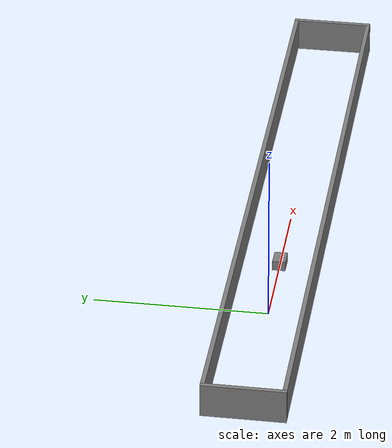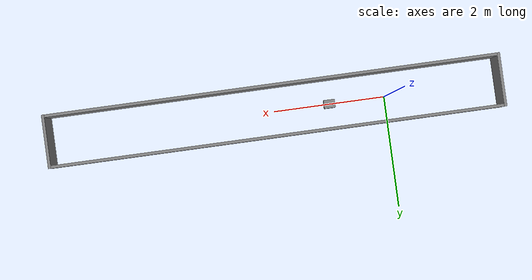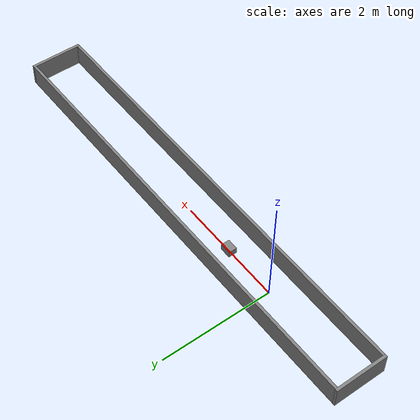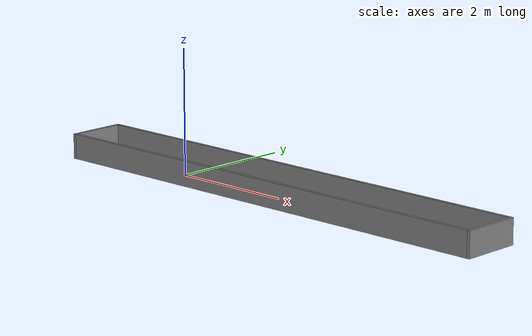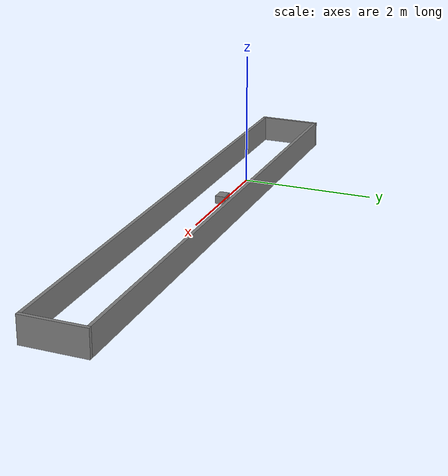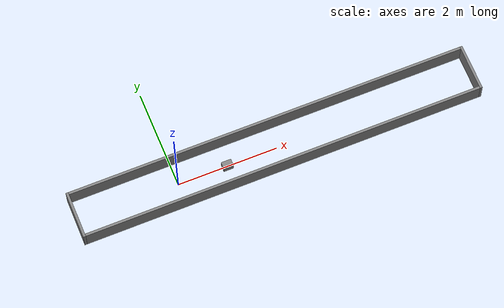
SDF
<?xml version='1.0' encoding='utf-8'?>
<sdf version="1.9"><world name="g0_lab"><gravity>0 0 0</gravity><physics name="g0_physics" type="ignored"><max_step_size>0.001</max_step_size><real_time_factor>1</real_time_factor></physics><plugin filename="gz-sim-physics-system" name="gz::sim::systems::Physics" /><plugin filename="gz-sim-user-commands-system" name="gz::sim::systems::UserCommands" /><plugin filename="gz-sim-scene-broadcaster-system" name="gz::sim::systems::SceneBroadcaster" /><plugin filename="gz-sim-sensors-system" name="gz::sim::systems::Sensors"><render_engine>ogre2</render_engine></plugin><scene><ambient>.8 .8 .8 1</ambient><background>.1 .1 .1 1</background></scene><model name="g0_wall_0"><static>true</static><pose>2.0 -0.45 0.2 0 0 0.0</pose><link name="body"><visual name="g0_wall_0_visual"><geometry><box><size>8.0 0.05 0.4</size></box></geometry><material><ambient>.5 .5 .5 1</ambient><diffuse>.5 .5 .5 1</diffuse></material></visual><collision name="g0_wall_0_collision"><geometry><box><size>8.0 0.05 0.4</size></box></geometry></collision></link></model><model name="g0_wall_1"><static>true</static><pose>2.0 0.45 0.2 0 0 0.0</pose><link name="body"><visual name="g0_wall_1_visual"><geometry><box><size>8.0 0.05 0.4</size></box></geometry><material><ambient>.5 .5 .5 1</ambient><diffuse>.5 .5 .5 1</diffuse></material></visual><collision name="g0_wall_1_collision"><geometry><box><size>8.0 0.05 0.4</size></box></geometry></collision></link></model><model name="g0_wall_2"><static>true</static><pose>-2.025 0.0 0.2 0 0 0.0</pose><link name="body"><visual name="g0_wall_2_visual"><geometry><box><size>0.05 0.95 0.4</size></box></geometry><material><ambient>.5 .5 .5 1</ambient><diffuse>.5 .5 .5 1</diffuse></material></visual><collision name="g0_wall_2_collision"><geometry><box><size>0.05 0.95 0.4</size></box></geometry></collision></link></model><model name="g0_wall_3"><static>true</static><pose>6.025 0.0 0.2 0 0 0.0</pose><link name="body"><visual name="g0_wall_3_visual"><geometry><box><size>0.05 0.95 0.4</size></box></geometry><material><ambient>.5 .5 .5 1</ambient><diffuse>.5 .5 .5 1</diffuse></material></visual><collision name="g0_wall_3_collision"><geometry><box><size>0.05 0.95 0.4</size></box></geometry></collision></link></model><model name="g0_actor"><static>true</static><pose>1.0 0.0 0.06 0 0 0.0</pose><link name="body"><visual name="g0_actor_visual"><geometry><box><size>0.2 0.15 0.12</size></box></geometry><material><ambient>.5 .5 .5 1</ambient><diffuse>.5 .5 .5 1</diffuse></material></visual><collision name="g0_actor_collision"><geometry><box><size>0.2 0.15 0.12</size></box></geometry></collision></link><plugin filename="gz-sim-pose-publisher-system" name="gz::sim::systems::PosePublisher"><publish_model_pose>true</publish_model_pose><publish_link_pose>false</publish_link_pose><use_pose_vector_msg>true</use_pose_vector_msg><static_publisher>false</static_publisher><update_frequency>100</update_frequency><topic>/g0/actor_pose</topic></plugin></model><model name="g0_sensor_rig"><static>true</static><link name="laser_frame"><sensor name="g0_c1" type="gpu_lidar"><pose>0.06 0.0 0.095 0.0 -0.0 0.0</pose><always_on>true</always_on><visualize>false</visualize><update_rate>500.0</update_rate><topic>/g0/raw</topic><gz_frame_id>laser_frame</gz_frame_id><lidar><scan><horizontal><samples>500</samples><resolution>1</resolution><min_angle>-3.141592653589793</min_angle><max_angle>3.129026282975434</max_angle></horizontal></scan><range><min>0.05</min><max>12.0</max><resolution>0.015</resolution></range></lidar></sensor></link></model></world></sdf>
